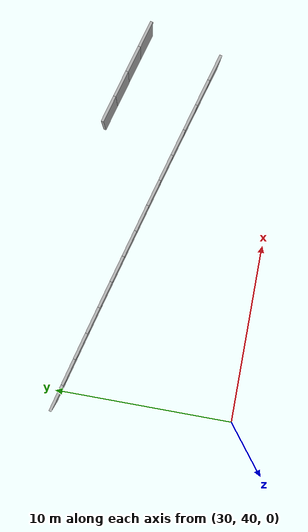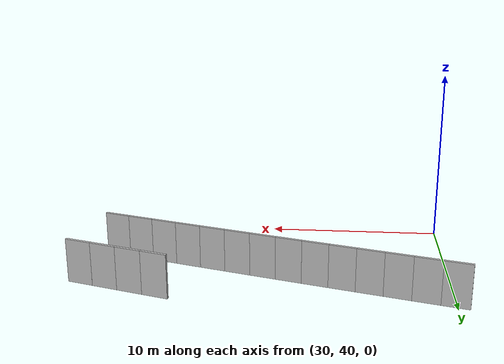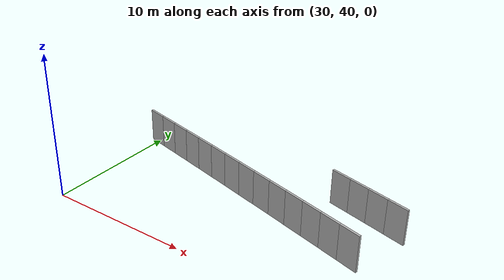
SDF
<?xml version="1.0" ?>
<sdf version="1.6">
  <model name="sps_3145">
    <pose frame="">0 0 0 0 -0 0</pose>
    <static>1</static>
    <self_collide>0</self_collide>
    <allow_auto_disable>0</allow_auto_disable>
    <link name="Wall10738">
      <kinematic>0</kinematic>
      <gravity>1</gravity>
      <self_collide>0</self_collide>
      <collision name="collision">
        <geometry>
          <box>
            <size>1.49658 0.15 2.5</size>
          </box>
        </geometry>
        <pose frame="">0 0 0 0 -0 0</pose>
      </collision>
      <visual name="visual">
        <geometry>
          <box>
            <size>1.49658 0.15 2.5</size>
          </box>
        </geometry>
        <pose frame="">0 0 0 0 -0 0</pose>
        <cast_shadows>1</cast_shadows>
        <transparency>0.0</transparency>
      </visual>
      <pose frame="">48.8596 44.5353 1.25 0 -0 2.86381</pose>
    </link>
    <link name="Wall10739">
      <kinematic>0</kinematic>
      <gravity>1</gravity>
      <self_collide>0</self_collide>
      <collision name="collision">
        <geometry>
          <box>
            <size>1.49656 0.15 2.5</size>
          </box>
        </geometry>
        <pose frame="">0 0 0 0 -0 0</pose>
      </collision>
      <visual name="visual">
        <geometry>
          <box>
            <size>1.49656 0.15 2.5</size>
          </box>
        </geometry>
        <pose frame="">0 0 0 0 -0 0</pose>
        <cast_shadows>1</cast_shadows>
        <transparency>0.0</transparency>
      </visual>
      <pose frame="">47.4202 44.9447 1.25 0 -0 2.8652</pose>
    </link>
    <link name="Wall10740">
      <kinematic>0</kinematic>
      <gravity>1</gravity>
      <self_collide>0</self_collide>
      <collision name="collision">
        <geometry>
          <box>
            <size>1.49651 0.15 2.5</size>
          </box>
        </geometry>
        <pose frame="">0 0 0 0 -0 0</pose>
      </collision>
      <visual name="visual">
        <geometry>
          <box>
            <size>1.49651 0.15 2.5</size>
          </box>
        </geometry>
        <pose frame="">0 0 0 0 -0 0</pose>
        <cast_shadows>1</cast_shadows>
        <transparency>0.0</transparency>
      </visual>
      <pose frame="">45.9801 45.3518 1.25 0 -0 2.86697</pose>
    </link>
    <link name="Wall10741">
      <kinematic>0</kinematic>
      <gravity>1</gravity>
      <self_collide>0</self_collide>
      <collision name="collision">
        <geometry>
          <box>
            <size>1.49642 0.15 2.5</size>
          </box>
        </geometry>
        <pose frame="">0 0 0 0 -0 0</pose>
      </collision>
      <visual name="visual">
        <geometry>
          <box>
            <size>1.49642 0.15 2.5</size>
          </box>
        </geometry>
        <pose frame="">0 0 0 0 -0 0</pose>
        <cast_shadows>1</cast_shadows>
        <transparency>0.0</transparency>
      </visual>
      <pose frame="">44.5394 45.7565 1.25 0 -0 2.86853</pose>
    </link>
    <link name="Wall10742">
      <kinematic>0</kinematic>
      <gravity>1</gravity>
      <self_collide>0</self_collide>
      <collision name="collision">
        <geometry>
          <box>
            <size>1.49667 0.15 2.5</size>
          </box>
        </geometry>
        <pose frame="">0 0 0 0 -0 0</pose>
      </collision>
      <visual name="visual">
        <geometry>
          <box>
            <size>1.49667 0.15 2.5</size>
          </box>
        </geometry>
        <pose frame="">0 0 0 0 -0 0</pose>
        <cast_shadows>1</cast_shadows>
        <transparency>0.0</transparency>
      </visual>
      <pose frame="">43.098 46.159 1.25 0 -0 2.87005</pose>
    </link>
    <link name="Wall10743">
      <kinematic>0</kinematic>
      <gravity>1</gravity>
      <self_collide>0</self_collide>
      <collision name="collision">
        <geometry>
          <box>
            <size>1.49637 0.15 2.5</size>
          </box>
        </geometry>
        <pose frame="">0 0 0 0 -0 0</pose>
      </collision>
      <visual name="visual">
        <geometry>
          <box>
            <size>1.49637 0.15 2.5</size>
          </box>
        </geometry>
        <pose frame="">0 0 0 0 -0 0</pose>
        <cast_shadows>1</cast_shadows>
        <transparency>0.0</transparency>
      </visual>
      <pose frame="">41.6559 46.5592 1.25 0 -0 2.87169</pose>
    </link>
    <link name="Wall10744">
      <kinematic>0</kinematic>
      <gravity>1</gravity>
      <self_collide>0</self_collide>
      <collision name="collision">
        <geometry>
          <box>
            <size>1.49655 0.15 2.5</size>
          </box>
        </geometry>
        <pose frame="">0 0 0 0 -0 0</pose>
      </collision>
      <visual name="visual">
        <geometry>
          <box>
            <size>1.49655 0.15 2.5</size>
          </box>
        </geometry>
        <pose frame="">0 0 0 0 -0 0</pose>
        <cast_shadows>1</cast_shadows>
        <transparency>0.0</transparency>
      </visual>
      <pose frame="">40.2133 46.9571 1.25 0 -0 2.87325</pose>
    </link>
    <link name="Wall10745">
      <kinematic>0</kinematic>
      <gravity>1</gravity>
      <self_collide>0</self_collide>
      <collision name="collision">
        <geometry>
          <box>
            <size>1.49656 0.15 2.5</size>
          </box>
        </geometry>
        <pose frame="">0 0 0 0 -0 0</pose>
      </collision>
      <visual name="visual">
        <geometry>
          <box>
            <size>1.49656 0.15 2.5</size>
          </box>
        </geometry>
        <pose frame="">0 0 0 0 -0 0</pose>
        <cast_shadows>1</cast_shadows>
        <transparency>0.0</transparency>
      </visual>
      <pose frame="">38.77 47.3528 1.25 0 -0 2.87477</pose>
    </link>
    <link name="Wall10746">
      <kinematic>0</kinematic>
      <gravity>1</gravity>
      <self_collide>0</self_collide>
      <collision name="collision">
        <geometry>
          <box>
            <size>1.49652 0.15 2.5</size>
          </box>
        </geometry>
        <pose frame="">0 0 0 0 -0 0</pose>
      </collision>
      <visual name="visual">
        <geometry>
          <box>
            <size>1.49652 0.15 2.5</size>
          </box>
        </geometry>
        <pose frame="">0 0 0 0 -0 0</pose>
        <cast_shadows>1</cast_shadows>
        <transparency>0.0</transparency>
      </visual>
      <pose frame="">37.3261 47.7462 1.25 0 -0 2.87641</pose>
    </link>
    <link name="Wall10747">
      <kinematic>0</kinematic>
      <gravity>1</gravity>
      <self_collide>0</self_collide>
      <collision name="collision">
        <geometry>
          <box>
            <size>1.49643 0.15 2.5</size>
          </box>
        </geometry>
        <pose frame="">0 0 0 0 -0 0</pose>
      </collision>
      <visual name="visual">
        <geometry>
          <box>
            <size>1.49643 0.15 2.5</size>
          </box>
        </geometry>
        <pose frame="">0 0 0 0 -0 0</pose>
        <cast_shadows>1</cast_shadows>
        <transparency>0.0</transparency>
      </visual>
      <pose frame="">35.8816 48.1372 1.25 0 -0 2.87805</pose>
    </link>
    <link name="Wall10748">
      <kinematic>0</kinematic>
      <gravity>1</gravity>
      <self_collide>0</self_collide>
      <collision name="collision">
        <geometry>
          <box>
            <size>1.49649 0.15 2.5</size>
          </box>
        </geometry>
        <pose frame="">0 0 0 0 -0 0</pose>
      </collision>
      <visual name="visual">
        <geometry>
          <box>
            <size>1.49649 0.15 2.5</size>
          </box>
        </geometry>
        <pose frame="">0 0 0 0 -0 0</pose>
        <cast_shadows>1</cast_shadows>
        <transparency>0.0</transparency>
      </visual>
      <pose frame="">34.4365 48.5259 1.25 0 -0 2.87962</pose>
    </link>
    <link name="Wall10749">
      <kinematic>0</kinematic>
      <gravity>1</gravity>
      <self_collide>0</self_collide>
      <collision name="collision">
        <geometry>
          <box>
            <size>1.49647 0.15 2.5</size>
          </box>
        </geometry>
        <pose frame="">0 0 0 0 -0 0</pose>
      </collision>
      <visual name="visual">
        <geometry>
          <box>
            <size>1.49647 0.15 2.5</size>
          </box>
        </geometry>
        <pose frame="">0 0 0 0 -0 0</pose>
        <cast_shadows>1</cast_shadows>
        <transparency>0.0</transparency>
      </visual>
      <pose frame="">32.9908 48.9124 1.25 0 -0 2.88109</pose>
    </link>
    <link name="Wall10750">
      <kinematic>0</kinematic>
      <gravity>1</gravity>
      <self_collide>0</self_collide>
      <collision name="collision">
        <geometry>
          <box>
            <size>1.49661 0.15 2.5</size>
          </box>
        </geometry>
        <pose frame="">0 0 0 0 -0 0</pose>
      </collision>
      <visual name="visual">
        <geometry>
          <box>
            <size>1.49661 0.15 2.5</size>
          </box>
        </geometry>
        <pose frame="">0 0 0 0 -0 0</pose>
        <cast_shadows>1</cast_shadows>
        <transparency>0.0</transparency>
      </visual>
      <pose frame="">31.5445 49.2966 1.25 0 -0 2.88281</pose>
    </link>
    <link name="Wall10751">
      <kinematic>0</kinematic>
      <gravity>1</gravity>
      <self_collide>0</self_collide>
      <collision name="collision">
        <geometry>
          <box>
            <size>1.49647 0.15 2.5</size>
          </box>
        </geometry>
        <pose frame="">0 0 0 0 -0 0</pose>
      </collision>
      <visual name="visual">
        <geometry>
          <box>
            <size>1.49647 0.15 2.5</size>
          </box>
        </geometry>
        <pose frame="">0 0 0 0 -0 0</pose>
        <cast_shadows>1</cast_shadows>
        <transparency>0.0</transparency>
      </visual>
      <pose frame="">30.0975 49.6785 1.25 0 -0 2.8843</pose>
    </link>
    <link name="Wall11335">
      <kinematic>0</kinematic>
      <gravity>1</gravity>
      <self_collide>0</self_collide>
      <collision name="collision">
        <geometry>
          <box>
            <size>1.50305 0.15 2.5</size>
          </box>
        </geometry>
        <pose frame="">0 0 0 0 -0 0</pose>
      </collision>
      <visual name="visual">
        <geometry>
          <box>
            <size>1.50305 0.15 2.5</size>
          </box>
        </geometry>
        <pose frame="">0 0 0 0 -0 0</pose>
        <cast_shadows>1</cast_shadows>
        <transparency>0.0</transparency>
      </visual>
      <pose frame="">49.995 48.5166 1.25 0 -0 2.86381</pose>
    </link>
    <link name="Wall11336">
      <kinematic>0</kinematic>
      <gravity>1</gravity>
      <self_collide>0</self_collide>
      <collision name="collision">
        <geometry>
          <box>
            <size>1.50322 0.15 2.5</size>
          </box>
        </geometry>
        <pose frame="">0 0 0 0 -0 0</pose>
      </collision>
      <visual name="visual">
        <geometry>
          <box>
            <size>1.50322 0.15 2.5</size>
          </box>
        </geometry>
        <pose frame="">0 0 0 0 -0 0</pose>
        <cast_shadows>1</cast_shadows>
        <transparency>0.0</transparency>
      </visual>
      <pose frame="">48.5492 48.9278 1.25 0 -0 2.86519</pose>
    </link>
    <link name="Wall11337">
      <kinematic>0</kinematic>
      <gravity>1</gravity>
      <self_collide>0</self_collide>
      <collision name="collision">
        <geometry>
          <box>
            <size>1.50292 0.15 2.5</size>
          </box>
        </geometry>
        <pose frame="">0 0 0 0 -0 0</pose>
      </collision>
      <visual name="visual">
        <geometry>
          <box>
            <size>1.50292 0.15 2.5</size>
          </box>
        </geometry>
        <pose frame="">0 0 0 0 -0 0</pose>
        <cast_shadows>1</cast_shadows>
        <transparency>0.0</transparency>
      </visual>
      <pose frame="">47.1028 49.3367 1.25 0 -0 2.86695</pose>
    </link>
    <link name="Wall11338">
      <kinematic>0</kinematic>
      <gravity>1</gravity>
      <self_collide>0</self_collide>
      <collision name="collision">
        <geometry>
          <box>
            <size>1.50315 0.15 2.5</size>
          </box>
        </geometry>
        <pose frame="">0 0 0 0 -0 0</pose>
      </collision>
      <visual name="visual">
        <geometry>
          <box>
            <size>1.50315 0.15 2.5</size>
          </box>
        </geometry>
        <pose frame="">0 0 0 0 -0 0</pose>
        <cast_shadows>1</cast_shadows>
        <transparency>0.0</transparency>
      </visual>
      <pose frame="">45.6558 49.7432 1.25 0 -0 2.86851</pose>
    </link>
  </model>
</sdf>
